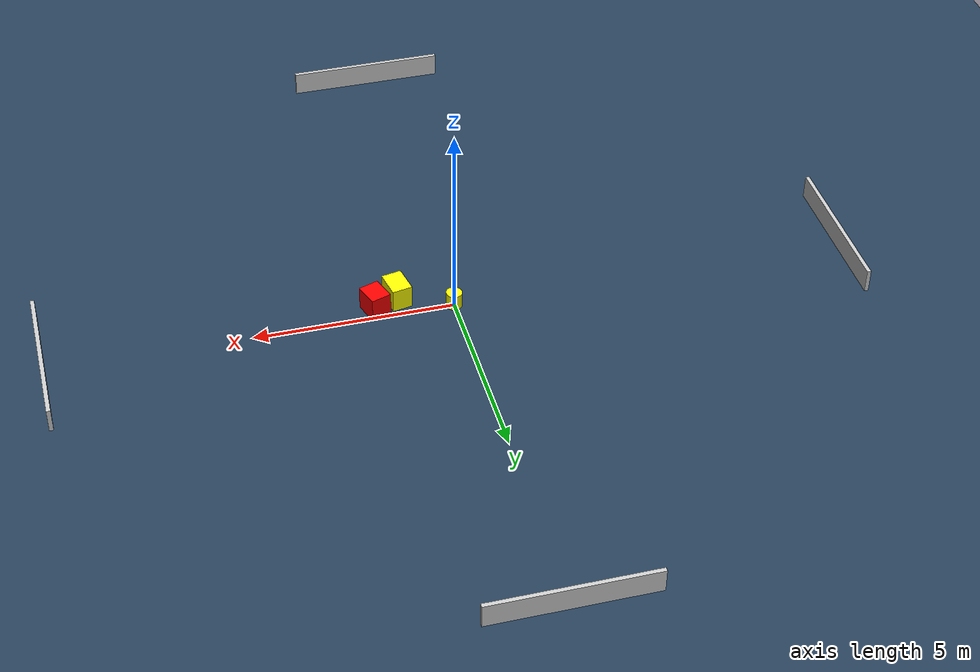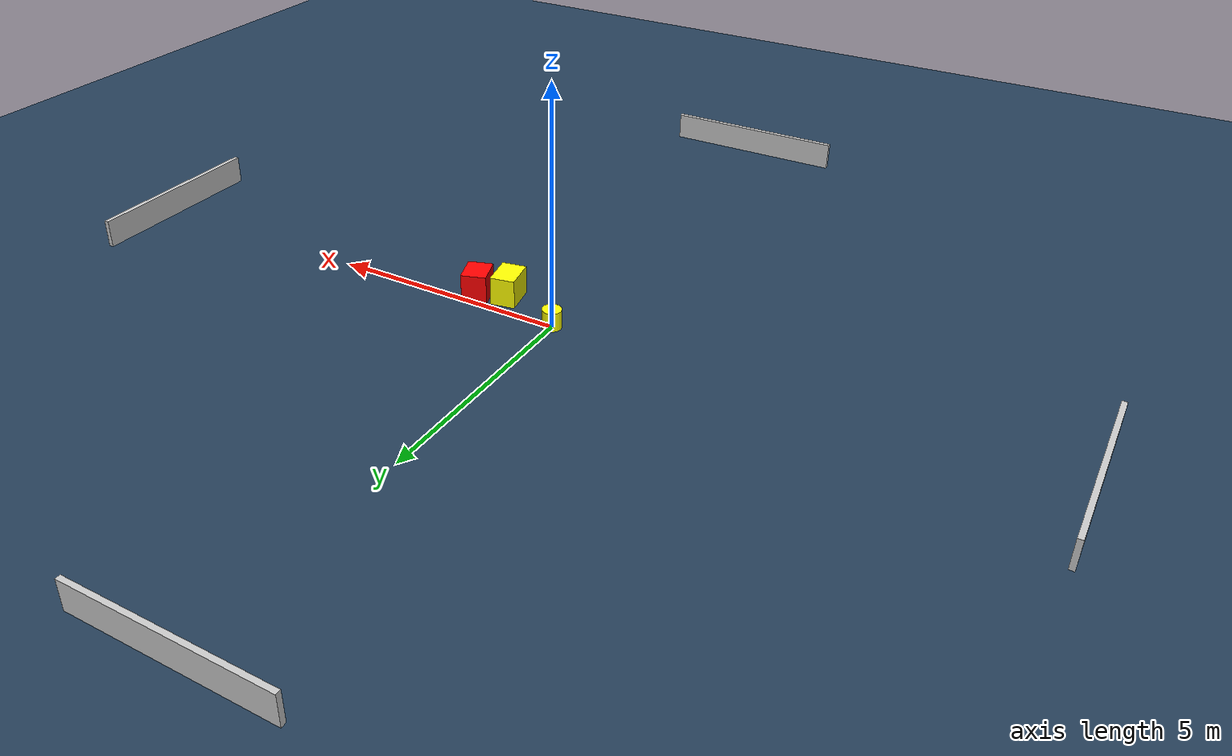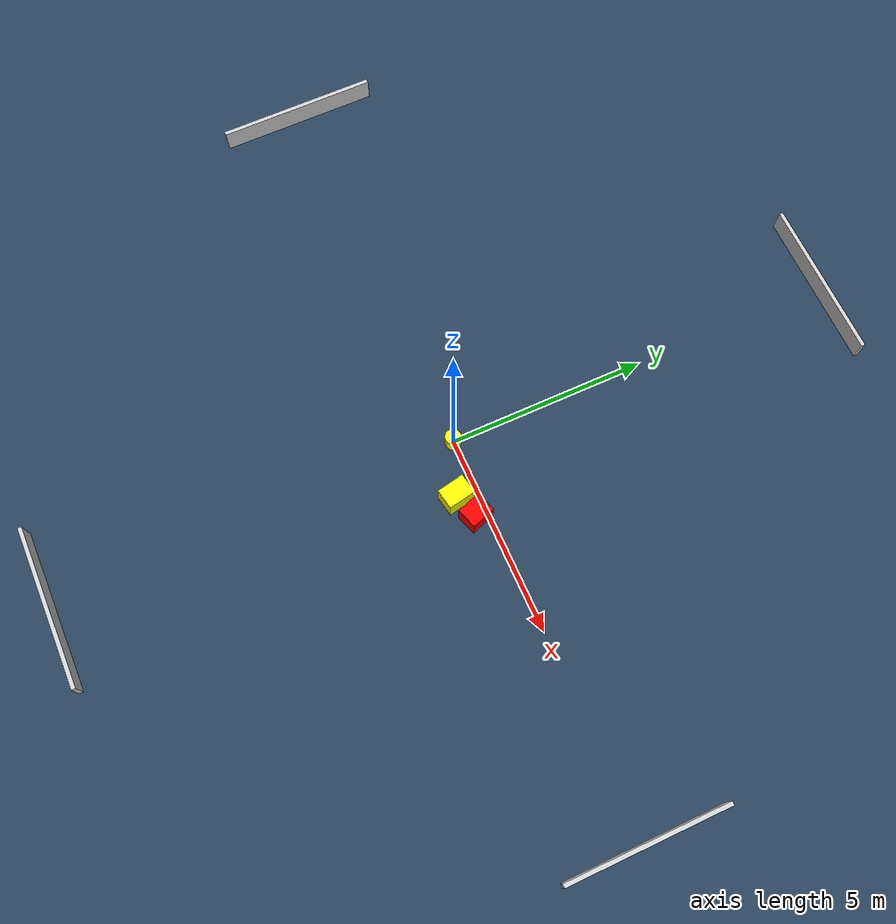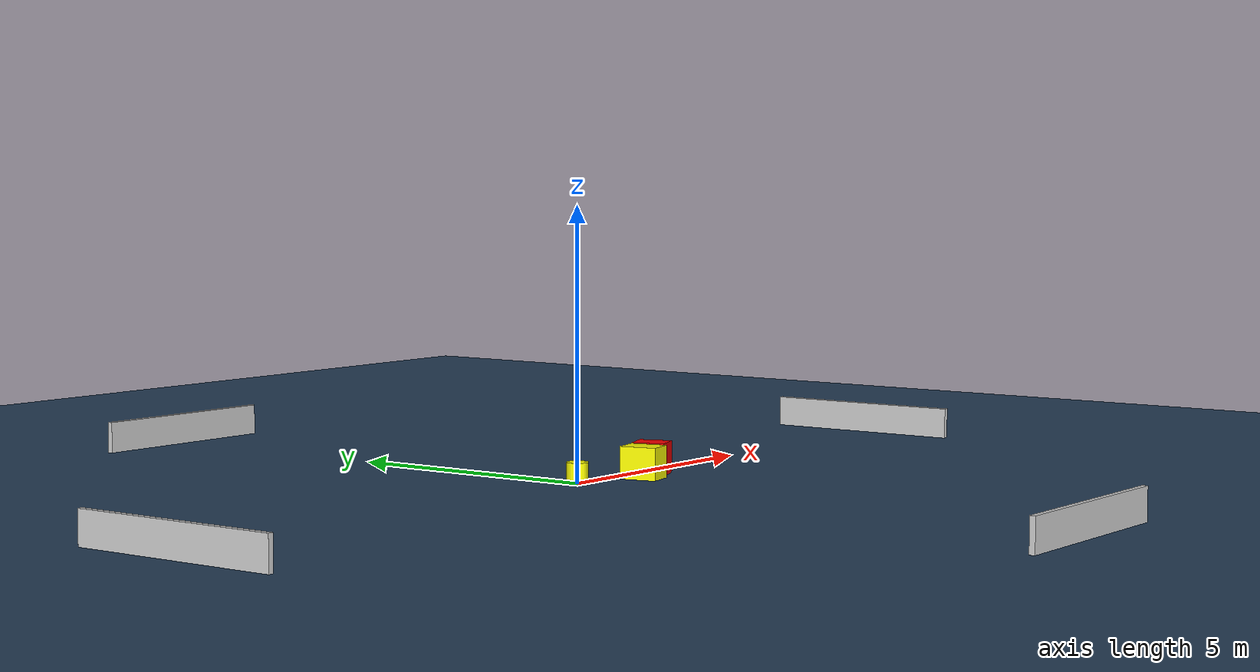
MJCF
<?xml version="1.0" ?>
<mujoco model="generated_environment">
  <option timestep="0.01" integrator="RK4" cone="elliptic"/>
  <default>
    <geom density="1"/>
  </default>
  <asset>
    <texture builtin="gradient" height="3072" name="skybox" rgb1="0.3 0.5 0.7" rgb2="0 0 0" type="skybox" width="512"/>
    <texture builtin="checker" height="300" name="groundplane" rgb1="0.2 0.3 0.4" rgb2="0.1 0.2 0.3" type="2d" width="300"/>
    <material name="groundplane" reflectance="0.2" texrepeat="5 5" texture="groundplane"/>
  </asset>
  <worldbody>
    <light dir="0 0 -1" directional="true" pos="0 0 1.5"/>
    <geom condim="3" friction="0.5 0.005 0.001" material="groundplane" name="floor" pos="0 0 0" size="0 0 0.05" type="plane"/>
    <body name="walls">
      <geom name="wall_1" condim="4" pos="-10.0 0.0 0.3" rgba="0.800000011920929 0.800000011920929 0.800000011920929 1.0" size="0.05 2.0 0.3" type="box"/>
      <geom name="wall_2" condim="4" pos="10.0 0.0 0.3" rgba="0.800000011920929 0.800000011920929 0.800000011920929 1.0" size="0.05 2.0 0.3" type="box"/>
      <geom name="wall_3" condim="4" pos="0.0 -10.0 0.3" rgba="0.800000011920929 0.800000011920929 0.800000011920929 1.0" size="2.0 0.05 0.3" type="box"/>
      <geom name="wall_4" condim="4" pos="0.0 10.0 0.3" rgba="0.800000011920929 0.800000011920929 0.800000011920929 1.0" size="2.0 0.05 0.3" type="box"/>
    </body>
    <body name="robot">
      <joint name="joint_x" type="slide" pos="0 0 0" axis="1 0 0"/>
      <joint name="joint_y" type="slide" pos="0 0 0" axis="0 1 0"/>
      <geom name="robot" type="cylinder" pos="0.0 0.0 0.2" size="0.2 0.2 0.0" mass="5.0" friction="1.0 0.005 0.0001" condim="4" rgba="1.0 1.0 0.0 1.0"/>
    </body>
    <body name="obstacle_1_movable">
      <geom name="obstacle_1_movable" condim="4" pos="1.3161243947153571 -0.5128870065207575 0.3" euler="0 0 10.884908737929706" friction="0.0 0.005 0.001" rgba="1.0 1.0 0.0 1.0" size="0.25424671540809823 0.3471741275720601 0.3" type="box" mass="0.1"/>
      <joint type="free"/>
    </body>
    <body name="obstacle_2_static">
      <geom name="obstacle_2_static" condim="4" pos="1.9137721115509883 -0.28328742032497817 0.3" euler="0 0 18.644318185578562" friction="0.0 0.005 0.001" rgba="1.0 0.0 0.0 1.0" size="0.2594213836378629 0.30600194403837117 0.3" type="box"/>
    </body>
  </worldbody>
  <actuator>
    <motor name="actuator_x" joint="joint_x" gear="1" ctrlrange="-1 1"/>
    <motor name="actuator_y" joint="joint_y" gear="1" ctrlrange="-1 1"/>
  </actuator>
</mujoco>
